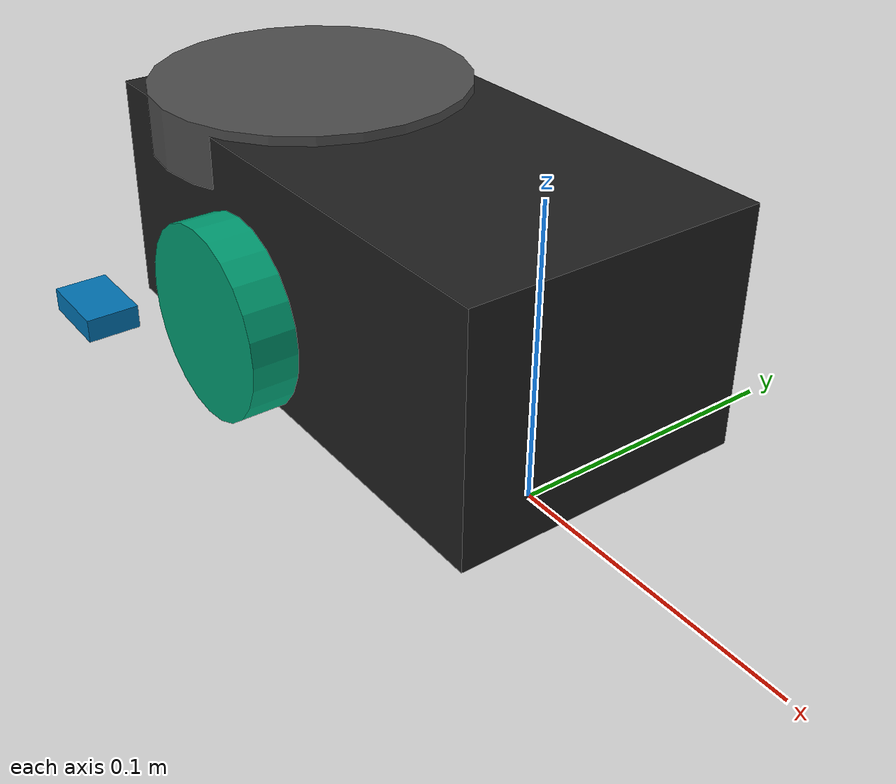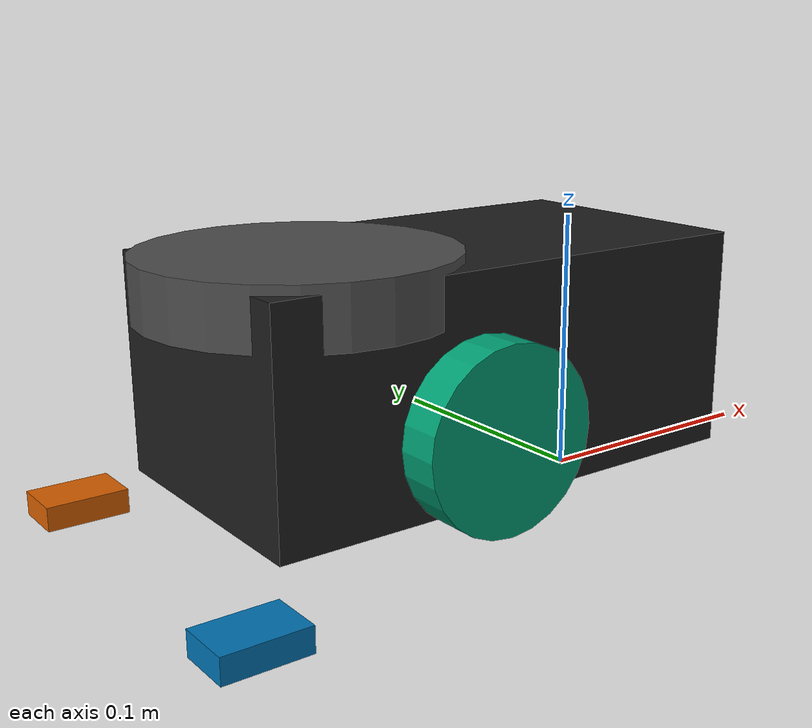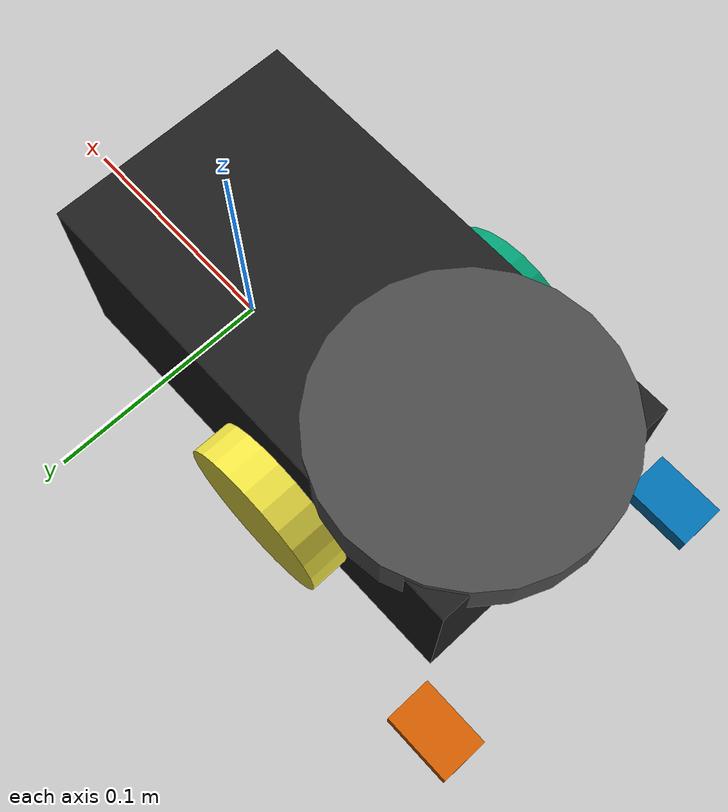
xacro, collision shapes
<?xml version="1.0" ?>
<robot name="ros_robot" xmlns:xacro="http://ros.org/wiki/xacro">
  <xacro:include filename="$(find robot_description)/urdf/common_properties.xacro"/>
  <xacro:include filename="$(find robot_description)/urdf/robot_chassis.gazebo2.xacro"/>
  <link name="base_footprint"/>

  <joint name="base_joint" type="fixed">
    <parent link="base_footprint"/>
    <child link="base_link" />
    <origin xyz="0 0 0.010" rpy="0 0 0"/>
  </joint>

  <link name="base_link">
    <visual>
      <origin xyz="-0.064 0.0 0.0473" rpy="0 0 1.57"/>
      <geometry>
        <mesh filename="package://robot_description/meshes/Chassis.stl" scale="0.001 0.001 0.001"/>
      </geometry>
      <material name="light_black"/>
    </visual>

    <collision>
      <origin xyz="-0.064 0 0.0473" rpy="0 0 1.57"/>
      <geometry>
        <box size="0.1 0.19 0.08"/>
      </geometry>
    </collision>

    <inertial>
      <origin xyz="0 0 0" rpy="0 0 0"/>
      <mass value="0.532"/>
      <inertia ixx="0.001" ixy="0.000" ixz="0.00"
               iyy="0.001" iyz="0.000"
               izz="0.001" />
    </inertial>
  </link>

  <joint name="wheel_left_joint" type="continuous">
    <parent link="base_link"/>
    <child link="wheel_left_link"/>
    <origin xyz="-0.082 -0.053 0.034" rpy="0 -1.57 1.57"/>
    <axis xyz="0 0 1"/>
  </joint>

  <link name="wheel_left_link">
    <visual>
      <origin xyz="0.0 0.0 0.0 " rpy="0 0 0 "/>
      <geometry>
        <mesh filename="package://robot_description/meshes/left_tire.stl" scale="0.001 0.001 0.001"/>
      </geometry>
      <material name="dark"/>
    </visual>

    <collision>
      <origin xyz="0.0 0.0 0.0" rpy="0 0 0"/>
      <geometry>
        <cylinder length="0.025" radius="0.0325"/>
      </geometry>
    </collision>

    <inertial>
      <origin xyz="0 0 0" />
      <mass value="0.049" />
      <inertia ixx="3.07e-5" ixy="0.00" ixz="0.00"
               iyy="3.07e-5" iyz="0.00"
               izz="3.89e-5" />
      </inertial>
  </link>

  <joint name="wheel_right_joint" type="continuous">
    <parent link="base_link"/>
    <child link="wheel_right_link"/>
    <origin xyz="-0.082 0.053 0.034" rpy="0 -1.57 -1.57"/>
    <axis xyz="0 0 -1"/>
  </joint>

  <link name="wheel_right_link">
    <visual>
      <origin xyz="0.0 0.0 0.0" rpy="0 0 0"/>
      <geometry>
        <mesh filename="package://robot_description/meshes/right_tire.stl" scale="0.001 0.001 0.001"/>
      </geometry>
      <material name="dark"/>
    </visual>

    <collision>
      <origin xyz="0.0 0.0 0.0" rpy="0 0 0"/>
      <geometry>
        <cylinder length="0.025" radius="0.0325"/>
      </geometry>
    </collision>

     <inertial>
      <origin xyz="0 0 0" />
      <mass value="0.049" />
      <inertia ixx="3.07e-5" ixy="0.00" ixz="0.00"
               iyy="3.07e-5" iyz="0.00"
               izz="3.89e-5" />
      </inertial>
  </link>

  <joint name="caster_back_right_joint" type="fixed">
    <parent link="base_link"/>
    <child link="caster_back_right_link"/>
    <origin xyz="-0.177 -0.064 -0.004" rpy="-1.57 0 0"/>
  </joint>

  <link name="caster_back_right_link">
    <collision>
      <origin xyz="0 0.001 0" rpy="0 0 0"/>
      <geometry>
        <box size="0.030 0.009 0.020"/>
      </geometry>
    </collision>

    <inertial>
      <origin xyz="0 0 0" />
      <mass value="0.005" />
      <inertia ixx="0.001" ixy="0.0" ixz="0.0"
               iyy="0.001" iyz="0.0"
               izz="0.001" />
    </inertial>
  </link>

  <joint name="caster_back_left_joint" type="fixed">
    <parent link="base_link"/>
    <child link="caster_back_left_link"/>
    <origin xyz="-0.177 0.064 -0.004" rpy="-1.57 0 0"/>
  </joint>

  <link name="caster_back_left_link">
    <collision>
      <origin xyz="0 0.001 0" rpy="0 0 0"/>
      <geometry>
        <box size="0.030 0.009 0.020"/>
      </geometry>
    </collision>

    <inertial>
      <origin xyz="0 0 0" />
      <mass value="0.005" />
      <inertia ixx="0.001" ixy="0.0" ixz="0.0"
               iyy="0.001" iyz="0.0"
               izz="0.001" />
    </inertial>
  </link>

  <joint name="imu_joint" type="fixed">
    <parent link="base_link"/>
    <child link="imu_link"/>
    <origin xyz="0.0 0 0.068" rpy="0 0 0"/>
  </joint>

  <link name="imu_link"/>

  <joint name="scan_joint" type="fixed">
    <parent link="base_link"/>
    <child link="laser_link"/>
    <origin xyz="-0.120 0 0.08" rpy="0 0 0"/>
  </joint>

  <link name="laser_link">
    <visual>
      <origin xyz="0.0 0.0 0.0" rpy="0 0 0"/>
      <geometry>
        <mesh filename="package://robot_description/meshes/lds.stl" scale="0.001 0.001 0.001"/>
      </geometry>
      <material name="dark"/>
    </visual>

    <collision>
      <origin xyz="0.0 0 0.0" rpy="0 0 0"/>
      <geometry>
        <cylinder length="0.021" radius="0.055"/>
      </geometry>
    </collision>

    <inertial>
      <mass value="0.114" />
      <origin xyz="0 0 0" />
      <inertia ixx="0.001" ixy="0.0" ixz="0.0"
               iyy="0.001" iyz="0.0"
               izz="0.001" />
    </inertial>
  </link>
</robot>
